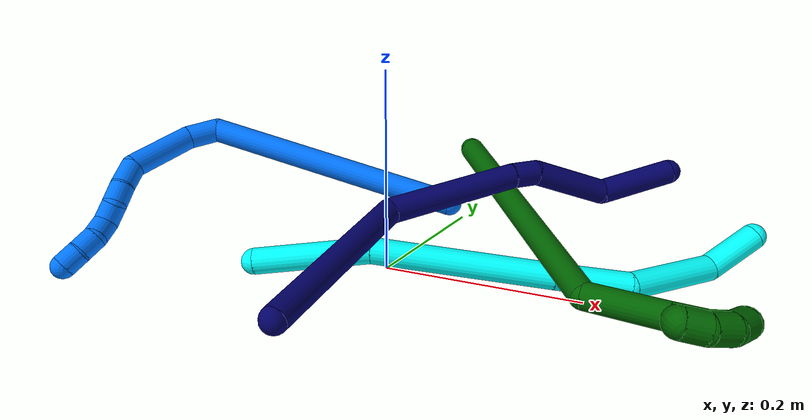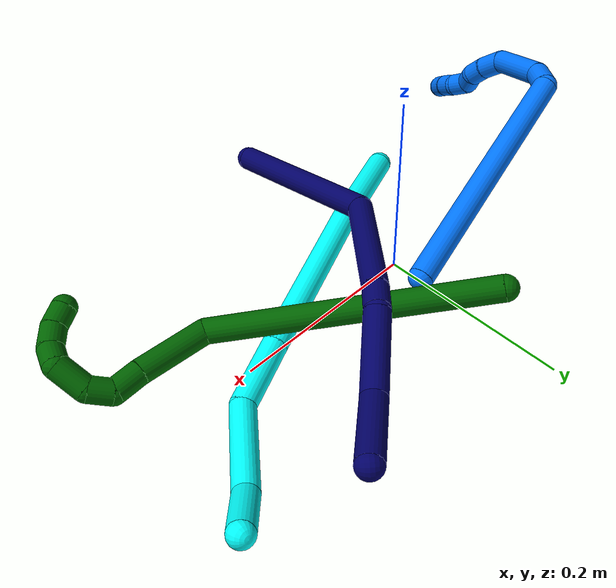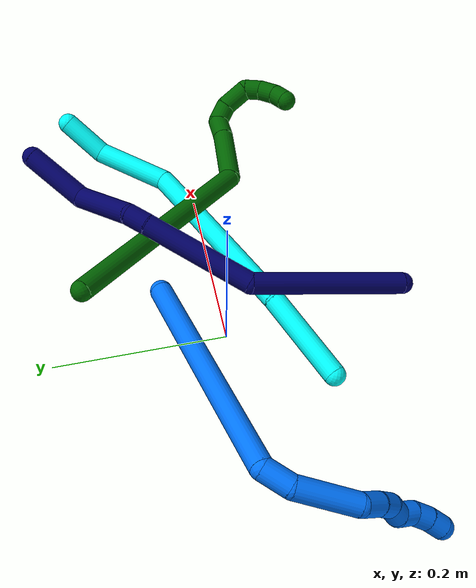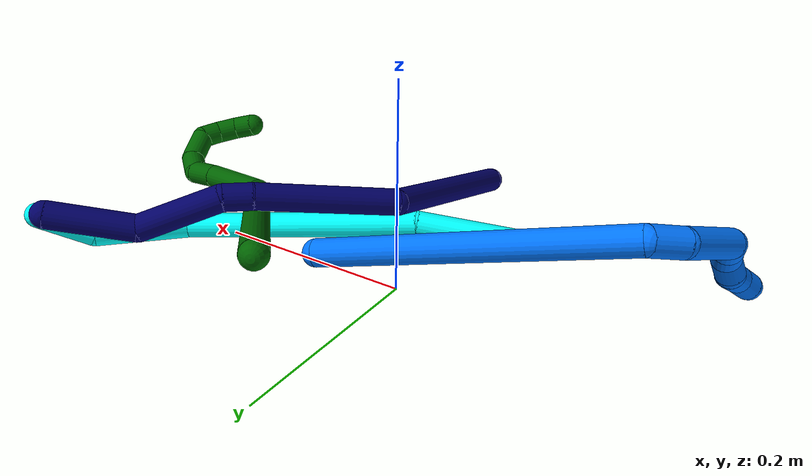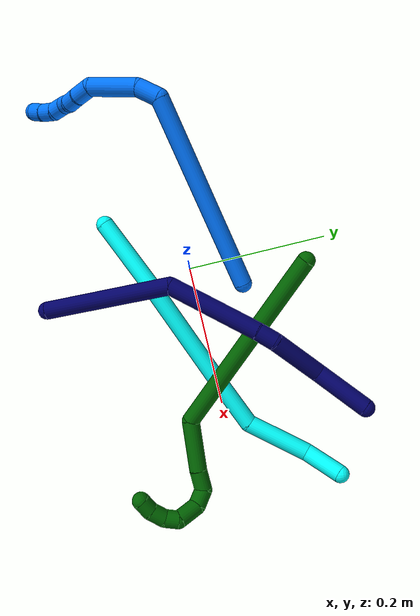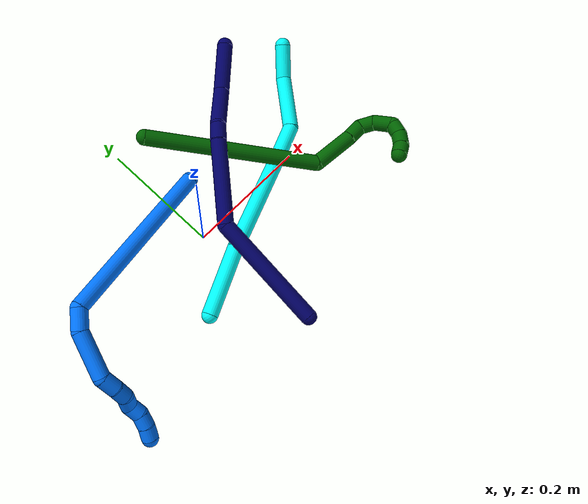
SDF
<sdf version="1.7">
 <world name="default">
  <model name="photoneo_s_sensor">
   <static>1</static>
   <pose>0 0 2 1.57079 1.57079 3.14159</pose>
   <link name="link">
    <inertial><mass>0.1</mass></inertial>
    <sensor name="sensor" type="depth">
     <update_rate>30</update_rate>
     <camera>
      <horizontal_fov>1.22</horizontal_fov>
      <image><width>1920</width><height>1200</height><format>B8G8R8</format></image>
      <clip><near>0.1</near><far>4</far></clip>
      <depth_camera><output>points</output></depth_camera>
     </camera>
     <plugin name="camera_plugin" filename="libgazebo_ros_depth_camera.so">
      <baseline>0.2</baseline>
      <alwaysOn>1</alwaysOn>
      <updateRate>0.0</updateRate>
      <cameraName>camera_ir</cameraName>
      <imageTopicName>/camera/color/image_raw</imageTopicName>
      <cameraInfoTopicName>/camera/color/camera_info</cameraInfoTopicName>
      <depthImageTopicName>/camera/depth/image_raw</depthImageTopicName>
      <depthImageCameraInfoTopicName>/camera/depth/camera_info</depthImageCameraInfoTopicName>
      <pointCloudTopicName>/camera/depth/points</pointCloudTopicName>
      <frameName>fr_optical</frameName>
      <pointCloudCutoff>0.1</pointCloudCutoff>
      <pointCloudCutoffMax>2.0</pointCloudCutoffMax>
      <distortionK1>0</distortionK1>
      <distortionK2>0</distortionK2>
      <distortionK3>0</distortionK3>
      <distortionT1>0</distortionT1>
      <distortionT2>0</distortionT2>
      <CxPrime>0</CxPrime>
      <Cx>0</Cx>
      <Cy>0</Cy>
      <focalLength>0</focalLength>
      <hackBaseline>0</hackBaseline>
     </plugin>
    </sensor>
   </link>
  </model>
  <model name="bin">
   <static>1</static>
   <link name="bottom">
    <collision name="collision-bottom">
     <pose>0 0 -0.01 0 -0 0</pose>
     <geometry><box><size>0.8 0.6 0.02</size></box></geometry>
     <surface>
      <friction><ode><mu>100</mu><mu2>100</mu2></ode></friction>
      <contact><collide_bitmask>65535</collide_bitmask></contact>
     </surface>
    </collision>
   </link>
   <link name="west_wall">
    <collision name="collision-west_wall">
     <pose>-0.41 0 0.1 0 -0 0</pose>
     <geometry><box><size>0.02 0.6 0.2</size></box></geometry>
     <surface>
      <friction><ode><mu>100</mu><mu2>100</mu2></ode></friction>
      <contact><collide_bitmask>65535</collide_bitmask></contact>
     </surface>
    </collision>
   </link>
   <link name="east_wall">
    <collision name="collision-east_wall">
     <pose>0.41 0 0.1 0 -0 0</pose>
     <geometry><box><size>0.02 0.6 0.2</size></box></geometry>
     <surface>
      <friction><ode><mu>100</mu><mu2>100</mu2></ode></friction>
      <contact><collide_bitmask>65535</collide_bitmask></contact>
     </surface>
    </collision>
   </link>
   <link name="south_wall">
    <collision name="collision-south_wall">
     <pose>0 -0.31 0.1 0 -0 0</pose>
     <geometry><box><size>0.8 0.02 0.2</size></box></geometry>
     <surface>
      <friction><ode><mu>100</mu><mu2>100</mu2></ode></friction>
      <contact><collide_bitmask>65535</collide_bitmask></contact>
     </surface>
    </collision>
   </link>
   <link name="north_wall">
    <collision name="collision-north_wall">
     <pose>0 0.31 0.1 0 -0 0</pose>
     <geometry><box><size>0.8 0.02 0.2</size></box></geometry>
     <surface>
      <friction><ode><mu>100</mu><mu2>100</mu2></ode></friction>
      <contact><collide_bitmask>65535</collide_bitmask></contact>
     </surface>
    </collision>
   </link>
  </model>
  <model name="3">
   <static>0</static>
   <link name="3">
    <collision name="collision-cylinder-e_1_1_4">
     <pose>-0.047661 0.008458 -0.026598 -2.83372 -1.04103 2.61292</pose>
     <geometry><cylinder><radius>0.0125</radius><length>0.110464</length></cylinder></geometry>
     <surface>
      <friction><ode><mu>1.16</mu><mu2>1.16</mu2><slip1>0</slip1><slip2>0</slip2></ode></friction>
      <contact><ode><kp>1e+06</kp><kd>1</kd><max_vel>0</max_vel><min_depth>0.001</min_depth></ode></contact>
     </surface>
    </collision>
    <visual name="visual-cylinder-e_1_1_4">
     <pose>-0.047661 0.008458 -0.026598 -2.83372 -1.04103 2.61292</pose>
     <geometry><cylinder><radius>0.0125</radius><length>0.110464</length></cylinder></geometry>
     <material><ambient>0.003922 1 0.996078 1</ambient></material>
    </visual>
    <collision name="collision-cylinder-e_2_4_5">
     <pose>-0.16972 0.046668 -0.083206 -2.36049 -1.05423 1.91034</pose>
     <geometry><cylinder><radius>0.0125</radius><length>0.171124</length></cylinder></geometry>
     <surface>
      <friction><ode><mu>1.16</mu><mu2>1.16</mu2><slip1>0</slip1><slip2>0</slip2></ode></friction>
      <contact><ode><kp>1e+06</kp><kd>1</kd><max_vel>0</max_vel><min_depth>0.001</min_depth></ode></contact>
     </surface>
    </collision>
    <visual name="visual-cylinder-e_2_4_5">
     <pose>-0.16972 0.046668 -0.083206 -2.36049 -1.05423 1.91034</pose>
     <geometry><cylinder><radius>0.0125</radius><length>0.171124</length></cylinder></geometry>
     <material><ambient>0.003922 1 0.996078 1</ambient></material>
    </visual>
    <collision name="collision-cylinder-e_3_5_6">
     <pose>-0.274149 0.088351 -0.126179 -2.39769 -1.04027 1.94569</pose>
     <geometry><cylinder><radius>0.0125</radius><length>0.069634</length></cylinder></geometry>
     <surface>
      <friction><ode><mu>1.16</mu><mu2>1.16</mu2><slip1>0</slip1><slip2>0</slip2></ode></friction>
      <contact><ode><kp>1e+06</kp><kd>1</kd><max_vel>0</max_vel><min_depth>0.001</min_depth></ode></contact>
     </surface>
    </collision>
    <visual name="visual-cylinder-e_3_5_6">
     <pose>-0.274149 0.088351 -0.126179 -2.39769 -1.04027 1.94569</pose>
     <geometry><cylinder><radius>0.0125</radius><length>0.069634</length></cylinder></geometry>
     <material><ambient>0.003922 1 0.996078 1</ambient></material>
    </visual>
    <collision name="collision-cylinder-e_4_6_7">
     <pose>-0.329491 0.11679 -0.174176 -2.70121 -0.578881 1.85258</pose>
     <geometry><cylinder><radius>0.0125</radius><length>0.092533</length></cylinder></geometry>
     <surface>
      <friction><ode><mu>1.16</mu><mu2>1.16</mu2><slip1>0</slip1><slip2>0</slip2></ode></friction>
      <contact><ode><kp>1e+06</kp><kd>1</kd><max_vel>0</max_vel><min_depth>0.001</min_depth></ode></contact>
     </surface>
    </collision>
    <visual name="visual-cylinder-e_4_6_7">
     <pose>-0.329491 0.11679 -0.174176 -2.70121 -0.578881 1.85258</pose>
     <geometry><cylinder><radius>0.0125</radius><length>0.092533</length></cylinder></geometry>
     <material><ambient>0.003922 1 0.996078 1</ambient></material>
    </visual>
    <collision name="collision-cylinder-e_5_7_2">
     <pose>-0.370523 0.131011 -0.232415 3.04331 -0.593143 -2.82245</pose>
     <geometry><cylinder><radius>0.0125</radius><length>0.056245</length></cylinder></geometry>
     <surface>
      <friction><ode><mu>1.16</mu><mu2>1.16</mu2><slip1>0</slip1><slip2>0</slip2></ode></friction>
      <contact><ode><kp>1e+06</kp><kd>1</kd><max_vel>0</max_vel><min_depth>0.001</min_depth></ode></contact>
     </surface>
    </collision>
    <visual name="visual-cylinder-e_5_7_2">
     <pose>-0.370523 0.131011 -0.232415 3.04331 -0.593143 -2.82245</pose>
     <geometry><cylinder><radius>0.0125</radius><length>0.056245</length></cylinder></geometry>
     <material><ambient>0.003922 1 0.996078 1</ambient></material>
    </visual>
    <collision name="collision-sphere-2">
     <pose>-0.386243 0.128723 -0.255622 0 -0 0</pose>
     <geometry><sphere><radius>0.0125</radius></sphere></geometry>
     <surface>
      <friction><ode><mu>1.16</mu><mu2>1.16</mu2><slip1>0</slip1><slip2>0</slip2></ode></friction>
      <contact><ode><kp>1e+06</kp><kd>1</kd><max_vel>0</max_vel><min_depth>0.001</min_depth></ode></contact>
     </surface>
    </collision>
    <visual name="visual-sphere-2">
     <pose>-0.386243 0.128723 -0.255622 0 -0 0</pose>
     <geometry><sphere><radius>0.0125</radius></sphere></geometry>
     <material><ambient>0.003922 1 0.996078 1</ambient></material>
    </visual>
    <collision name="collision-sphere-7">
     <pose>-0.354803 0.133299 -0.209209 0 -0 0</pose>
     <geometry><sphere><radius>0.0125</radius></sphere></geometry>
     <surface>
      <friction><ode><mu>1.16</mu><mu2>1.16</mu2><slip1>0</slip1><slip2>0</slip2></ode></friction>
      <contact><ode><kp>1e+06</kp><kd>1</kd><max_vel>0</max_vel><min_depth>0.001</min_depth></ode></contact>
     </surface>
    </collision>
    <visual name="visual-sphere-7">
     <pose>-0.354803 0.133299 -0.209209 0 -0 0</pose>
     <geometry><sphere><radius>0.0125</radius></sphere></geometry>
     <material><ambient>0.003922 1 0.996078 1</ambient></material>
    </visual>
    <collision name="collision-sphere-6">
     <pose>-0.30418 0.10028 -0.139142 0 -0 0</pose>
     <geometry><sphere><radius>0.0125</radius></sphere></geometry>
     <surface>
      <friction><ode><mu>1.16</mu><mu2>1.16</mu2><slip1>0</slip1><slip2>0</slip2></ode></friction>
      <contact><ode><kp>1e+06</kp><kd>1</kd><max_vel>0</max_vel><min_depth>0.001</min_depth></ode></contact>
     </surface>
    </collision>
    <visual name="visual-sphere-6">
     <pose>-0.30418 0.10028 -0.139142 0 -0 0</pose>
     <geometry><sphere><radius>0.0125</radius></sphere></geometry>
     <material><ambient>0.003922 1 0.996078 1</ambient></material>
    </visual>
    <collision name="collision-sphere-5">
     <pose>-0.244118 0.076421 -0.113216 0 -0 0</pose>
     <geometry><sphere><radius>0.0125</radius></sphere></geometry>
     <surface>
      <friction><ode><mu>1.16</mu><mu2>1.16</mu2><slip1>0</slip1><slip2>0</slip2></ode></friction>
      <contact><ode><kp>1e+06</kp><kd>1</kd><max_vel>0</max_vel><min_depth>0.001</min_depth></ode></contact>
     </surface>
    </collision>
    <visual name="visual-sphere-5">
     <pose>-0.244118 0.076421 -0.113216 0 -0 0</pose>
     <geometry><sphere><radius>0.0125</radius></sphere></geometry>
     <material><ambient>0.003922 1 0.996078 1</ambient></material>
    </visual>
    <collision name="collision-sphere-1">
     <geometry><sphere><radius>0.0125</radius></sphere></geometry>
     <surface>
      <friction><ode><mu>1.16</mu><mu2>1.16</mu2><slip1>0</slip1><slip2>0</slip2></ode></friction>
      <contact><ode><kp>1e+06</kp><kd>1</kd><max_vel>0</max_vel><min_depth>0.001</min_depth></ode></contact>
     </surface>
    </collision>
    <visual name="visual-sphere-1">
     <geometry><sphere><radius>0.0125</radius></sphere></geometry>
     <material><ambient>0.003922 1 0.996078 1</ambient></material>
    </visual>
    <collision name="collision-sphere-4">
     <pose>-0.095322 0.016915 -0.053197 0 -0 0</pose>
     <geometry><sphere><radius>0.0125</radius></sphere></geometry>
     <surface>
      <friction><ode><mu>1.16</mu><mu2>1.16</mu2><slip1>0</slip1><slip2>0</slip2></ode></friction>
      <contact><ode><kp>1e+06</kp><kd>1</kd><max_vel>0</max_vel><min_depth>0.001</min_depth></ode></contact>
     </surface>
    </collision>
    <visual name="visual-sphere-4">
     <pose>-0.095322 0.016915 -0.053197 0 -0 0</pose>
     <geometry><sphere><radius>0.0125</radius></sphere></geometry>
     <material><ambient>0.003922 1 0.996078 1</ambient></material>
    </visual>
    <inertial>
     <pose>-0.209454 0.066496 -0.110305 0 -0 0</pose>
     <mass>0.5</mass>
     <inertia>
      <ixx>0.000107</ixx>
      <ixy>0</ixy>
      <ixz>0</ixz>
      <iyy>0.000835</iyy>
      <iyz>0</iyz>
      <izz>0.000324</izz>
     </inertia>
    </inertial>
   </link>
   <pose>-0.086796 -0.1019 0.026876 -2.02742 0.043628 3.02572</pose>
  </model>
  <model name="6">
   <static>0</static>
   <link name="6">
    <collision name="collision-cylinder-e_1_1_4">
     <pose>0.025801 -0.017075 0.135964 0.124928 0.186105 0.011674</pose>
     <geometry><cylinder><radius>0.0125</radius><length>0.278879</length></cylinder></geometry>
     <surface>
      <friction><ode><mu>1.16</mu><mu2>1.16</mu2><slip1>0</slip1><slip2>0</slip2></ode></friction>
      <contact><ode><kp>1e+06</kp><kd>1</kd><max_vel>0</max_vel><min_depth>0.001</min_depth></ode></contact>
     </surface>
    </collision>
    <visual name="visual-cylinder-e_1_1_4">
     <pose>0.025801 -0.017075 0.135964 0.124928 0.186105 0.011674</pose>
     <geometry><cylinder><radius>0.0125</radius><length>0.278879</length></cylinder></geometry>
     <material><ambient>0 0.392157 0.003922 1</ambient></material>
    </visual>
    <collision name="collision-cylinder-e_2_4_5">
     <pose>0.080202 -0.042928 0.291678 0.418247 0.923655 0.210481</pose>
     <geometry><cylinder><radius>0.0125</radius><length>0.071698</length></cylinder></geometry>
     <surface>
      <friction><ode><mu>1.16</mu><mu2>1.16</mu2><slip1>0</slip1><slip2>0</slip2></ode></friction>
      <contact><ode><kp>1e+06</kp><kd>1</kd><max_vel>0</max_vel><min_depth>0.001</min_depth></ode></contact>
     </surface>
    </collision>
    <visual name="visual-cylinder-e_2_4_5">
     <pose>0.080202 -0.042928 0.291678 0.418247 0.923655 0.210481</pose>
     <geometry><cylinder><radius>0.0125</radius><length>0.071698</length></cylinder></geometry>
     <material><ambient>0 0.392157 0.003922 1</ambient></material>
    </visual>
    <collision name="collision-cylinder-e_3_5_6">
     <pose>0.1208 -0.056155 0.31815 0.584707 0.979201 0.318058</pose>
     <geometry><cylinder><radius>0.0125</radius><length>0.028906</length></cylinder></geometry>
     <surface>
      <friction><ode><mu>1.16</mu><mu2>1.16</mu2><slip1>0</slip1><slip2>0</slip2></ode></friction>
      <contact><ode><kp>1e+06</kp><kd>1</kd><max_vel>0</max_vel><min_depth>0.001</min_depth></ode></contact>
     </surface>
    </collision>
    <visual name="visual-cylinder-e_3_5_6">
     <pose>0.1208 -0.056155 0.31815 0.584707 0.979201 0.318058</pose>
     <geometry><cylinder><radius>0.0125</radius><length>0.028906</length></cylinder></geometry>
     <material><ambient>0 0.392157 0.003922 1</ambient></material>
    </visual>
    <collision name="collision-cylinder-e_4_6_7">
     <pose>0.139325 -0.05665 0.334268 -0.39835 0.56956 -0.118041</pose>
     <geometry><cylinder><radius>0.0125</radius><length>0.024212</length></cylinder></geometry>
     <surface>
      <friction><ode><mu>1.16</mu><mu2>1.16</mu2><slip1>0</slip1><slip2>0</slip2></ode></friction>
      <contact><ode><kp>1e+06</kp><kd>1</kd><max_vel>0</max_vel><min_depth>0.001</min_depth></ode></contact>
     </surface>
    </collision>
    <visual name="visual-cylinder-e_4_6_7">
     <pose>0.139325 -0.05665 0.334268 -0.39835 0.56956 -0.118041</pose>
     <geometry><cylinder><radius>0.0125</radius><length>0.024212</length></cylinder></geometry>
     <material><ambient>0 0.392157 0.003922 1</ambient></material>
    </visual>
    <collision name="collision-cylinder-e_5_7_8">
     <pose>0.147482 -0.04146 0.355885 -0.743423 0.097833 -0.038164</pose>
     <geometry><cylinder><radius>0.0125</radius><length>0.03336</length></cylinder></geometry>
     <surface>
      <friction><ode><mu>1.16</mu><mu2>1.16</mu2><slip1>0</slip1><slip2>0</slip2></ode></friction>
      <contact><ode><kp>1e+06</kp><kd>1</kd><max_vel>0</max_vel><min_depth>0.001</min_depth></ode></contact>
     </surface>
    </collision>
    <visual name="visual-cylinder-e_5_7_8">
     <pose>0.147482 -0.04146 0.355885 -0.743423 0.097833 -0.038164</pose>
     <geometry><cylinder><radius>0.0125</radius><length>0.03336</length></cylinder></geometry>
     <material><ambient>0 0.392157 0.003922 1</ambient></material>
    </visual>
    <collision name="collision-cylinder-e_6_8_9">
     <pose>0.142917 -0.025215 0.374227 -0.685815 -0.664386 0.245088</pose>
     <geometry><cylinder><radius>0.0125</radius><length>0.020094</length></cylinder></geometry>
     <surface>
      <friction><ode><mu>1.16</mu><mu2>1.16</mu2><slip1>0</slip1><slip2>0</slip2></ode></friction>
      <contact><ode><kp>1e+06</kp><kd>1</kd><max_vel>0</max_vel><min_depth>0.001</min_depth></ode></contact>
     </surface>
    </collision>
    <visual name="visual-cylinder-e_6_8_9">
     <pose>0.142917 -0.025215 0.374227 -0.685815 -0.664386 0.245088</pose>
     <geometry><cylinder><radius>0.0125</radius><length>0.020094</length></cylinder></geometry>
     <material><ambient>0 0.392157 0.003922 1</ambient></material>
    </visual>
    <collision name="collision-cylinder-e_7_9_10">
     <pose>0.128089 -0.013629 0.383105 -1.17395 -0.880371 0.607236</pose>
     <geometry><cylinder><radius>0.0125</radius><length>0.022395</length></cylinder></geometry>
     <surface>
      <friction><ode><mu>1.16</mu><mu2>1.16</mu2><slip1>0</slip1><slip2>0</slip2></ode></friction>
      <contact><ode><kp>1e+06</kp><kd>1</kd><max_vel>0</max_vel><min_depth>0.001</min_depth></ode></contact>
     </surface>
    </collision>
    <visual name="visual-cylinder-e_7_9_10">
     <pose>0.128089 -0.013629 0.383105 -1.17395 -0.880371 0.607236</pose>
     <geometry><cylinder><radius>0.0125</radius><length>0.022395</length></cylinder></geometry>
     <material><ambient>0 0.392157 0.003922 1</ambient></material>
    </visual>
    <collision name="collision-cylinder-e_8_10_2">
     <pose>0.111179 -0.001114 0.384935 -1.72548 -0.942764 1.07397</pose>
     <geometry><cylinder><radius>0.0125</radius><length>0.020456</length></cylinder></geometry>
     <surface>
      <friction><ode><mu>1.16</mu><mu2>1.16</mu2><slip1>0</slip1><slip2>0</slip2></ode></friction>
      <contact><ode><kp>1e+06</kp><kd>1</kd><max_vel>0</max_vel><min_depth>0.001</min_depth></ode></contact>
     </surface>
    </collision>
    <visual name="visual-cylinder-e_8_10_2">
     <pose>0.111179 -0.001114 0.384935 -1.72548 -0.942764 1.07397</pose>
     <geometry><cylinder><radius>0.0125</radius><length>0.020456</length></cylinder></geometry>
     <material><ambient>0 0.392157 0.003922 1</ambient></material>
    </visual>
    <collision name="collision-sphere-2">
     <pose>0.102903 0.004824 0.384009 0 -0 0</pose>
     <geometry><sphere><radius>0.0125</radius></sphere></geometry>
     <surface>
      <friction><ode><mu>1.16</mu><mu2>1.16</mu2><slip1>0</slip1><slip2>0</slip2></ode></friction>
      <contact><ode><kp>1e+06</kp><kd>1</kd><max_vel>0</max_vel><min_depth>0.001</min_depth></ode></contact>
     </surface>
    </collision>
    <visual name="visual-sphere-2">
     <pose>0.102903 0.004824 0.384009 0 -0 0</pose>
     <geometry><sphere><radius>0.0125</radius></sphere></geometry>
     <material><ambient>0 0.392157 0.003922 1</ambient></material>
    </visual>
    <collision name="collision-sphere-10">
     <pose>0.119456 -0.007052 0.385861 0 -0 0</pose>
     <geometry><sphere><radius>0.0125</radius></sphere></geometry>
     <surface>
      <friction><ode><mu>1.16</mu><mu2>1.16</mu2><slip1>0</slip1><slip2>0</slip2></ode></friction>
      <contact><ode><kp>1e+06</kp><kd>1</kd><max_vel>0</max_vel><min_depth>0.001</min_depth></ode></contact>
     </surface>
    </collision>
    <visual name="visual-sphere-10">
     <pose>0.119456 -0.007052 0.385861 0 -0 0</pose>
     <geometry><sphere><radius>0.0125</radius></sphere></geometry>
     <material><ambient>0 0.392157 0.003922 1</ambient></material>
    </visual>
    <collision name="collision-sphere-9">
     <pose>0.136722 -0.020206 0.380348 0 -0 0</pose>
     <geometry><sphere><radius>0.0125</radius></sphere></geometry>
     <surface>
      <friction><ode><mu>1.16</mu><mu2>1.16</mu2><slip1>0</slip1><slip2>0</slip2></ode></friction>
      <contact><ode><kp>1e+06</kp><kd>1</kd><max_vel>0</max_vel><min_depth>0.001</min_depth></ode></contact>
     </surface>
    </collision>
    <visual name="visual-sphere-9">
     <pose>0.136722 -0.020206 0.380348 0 -0 0</pose>
     <geometry><sphere><radius>0.0125</radius></sphere></geometry>
     <material><ambient>0 0.392157 0.003922 1</ambient></material>
    </visual>
    <collision name="collision-sphere-4">
     <pose>0.051602 -0.034149 0.271928 0 -0 0</pose>
     <geometry><sphere><radius>0.0125</radius></sphere></geometry>
     <surface>
      <friction><ode><mu>1.16</mu><mu2>1.16</mu2><slip1>0</slip1><slip2>0</slip2></ode></friction>
      <contact><ode><kp>1e+06</kp><kd>1</kd><max_vel>0</max_vel><min_depth>0.001</min_depth></ode></contact>
     </surface>
    </collision>
    <visual name="visual-sphere-4">
     <pose>0.051602 -0.034149 0.271928 0 -0 0</pose>
     <geometry><sphere><radius>0.0125</radius></sphere></geometry>
     <material><ambient>0 0.392157 0.003922 1</ambient></material>
    </visual>
    <collision name="collision-sphere-1">
     <geometry><sphere><radius>0.0125</radius></sphere></geometry>
     <surface>
      <friction><ode><mu>1.16</mu><mu2>1.16</mu2><slip1>0</slip1><slip2>0</slip2></ode></friction>
      <contact><ode><kp>1e+06</kp><kd>1</kd><max_vel>0</max_vel><min_depth>0.001</min_depth></ode></contact>
     </surface>
    </collision>
    <visual name="visual-sphere-1">
     <geometry><sphere><radius>0.0125</radius></sphere></geometry>
     <material><ambient>0 0.392157 0.003922 1</ambient></material>
    </visual>
    <collision name="collision-sphere-8">
     <pose>0.149111 -0.030225 0.368105 0 -0 0</pose>
     <geometry><sphere><radius>0.0125</radius></sphere></geometry>
     <surface>
      <friction><ode><mu>1.16</mu><mu2>1.16</mu2><slip1>0</slip1><slip2>0</slip2></ode></friction>
      <contact><ode><kp>1e+06</kp><kd>1</kd><max_vel>0</max_vel><min_depth>0.001</min_depth></ode></contact>
     </surface>
    </collision>
    <visual name="visual-sphere-8">
     <pose>0.149111 -0.030225 0.368105 0 -0 0</pose>
     <geometry><sphere><radius>0.0125</radius></sphere></geometry>
     <material><ambient>0 0.392157 0.003922 1</ambient></material>
    </visual>
    <collision name="collision-sphere-5">
     <pose>0.108803 -0.051706 0.311429 0 -0 0</pose>
     <geometry><sphere><radius>0.0125</radius></sphere></geometry>
     <surface>
      <friction><ode><mu>1.16</mu><mu2>1.16</mu2><slip1>0</slip1><slip2>0</slip2></ode></friction>
      <contact><ode><kp>1e+06</kp><kd>1</kd><max_vel>0</max_vel><min_depth>0.001</min_depth></ode></contact>
     </surface>
    </collision>
    <visual name="visual-sphere-5">
     <pose>0.108803 -0.051706 0.311429 0 -0 0</pose>
     <geometry><sphere><radius>0.0125</radius></sphere></geometry>
     <material><ambient>0 0.392157 0.003922 1</ambient></material>
    </visual>
    <collision name="collision-sphere-6">
     <pose>0.132796 -0.060604 0.324871 0 -0 0</pose>
     <geometry><sphere><radius>0.0125</radius></sphere></geometry>
     <surface>
      <friction><ode><mu>1.16</mu><mu2>1.16</mu2><slip1>0</slip1><slip2>0</slip2></ode></friction>
      <contact><ode><kp>1e+06</kp><kd>1</kd><max_vel>0</max_vel><min_depth>0.001</min_depth></ode></contact>
     </surface>
    </collision>
    <visual name="visual-sphere-6">
     <pose>0.132796 -0.060604 0.324871 0 -0 0</pose>
     <geometry><sphere><radius>0.0125</radius></sphere></geometry>
     <material><ambient>0 0.392157 0.003922 1</ambient></material>
    </visual>
    <collision name="collision-sphere-7">
     <pose>0.145853 -0.052695 0.343665 0 -0 0</pose>
     <geometry><sphere><radius>0.0125</radius></sphere></geometry>
     <surface>
      <friction><ode><mu>1.16</mu><mu2>1.16</mu2><slip1>0</slip1><slip2>0</slip2></ode></friction>
      <contact><ode><kp>1e+06</kp><kd>1</kd><max_vel>0</max_vel><min_depth>0.001</min_depth></ode></contact>
     </surface>
    </collision>
    <visual name="visual-sphere-7">
     <pose>0.145853 -0.052695 0.343665 0 -0 0</pose>
     <geometry><sphere><radius>0.0125</radius></sphere></geometry>
     <material><ambient>0 0.392157 0.003922 1</ambient></material>
    </visual>
    <inertial>
     <pose>0.065491 -0.026104 0.223932 0 -0 0</pose>
     <mass>0.5</mass>
     <inertia>
      <ixx>0.001852</ixx>
      <ixy>0</ixy>
      <ixz>0</ixz>
      <iyy>0.001876</iyy>
      <iyz>0</iyz>
      <izz>-0.000108</izz>
     </inertia>
    </inertial>
   </link>
   <pose>0.030191 0.151613 0.096958 1.80926 -0.393788 0.413408</pose>
  </model>
  <model name="7">
   <static>0</static>
   <link name="7">
    <collision name="collision-cylinder-e_1_1_4">
     <pose>-0.001954 0.06949 -0.059176 -2.2762 -0.021407 0.04634</pose>
     <geometry><cylinder><radius>0.0125</radius><length>0.182586</length></cylinder></geometry>
     <surface>
      <friction><ode><mu>1.16</mu><mu2>1.16</mu2><slip1>0</slip1><slip2>0</slip2></ode></friction>
      <contact><ode><kp>1e+06</kp><kd>1</kd><max_vel>0</max_vel><min_depth>0.001</min_depth></ode></contact>
     </surface>
    </collision>
    <visual name="visual-cylinder-e_1_1_4">
     <pose>-0.001954 0.06949 -0.059176 -2.2762 -0.021407 0.04634</pose>
     <geometry><cylinder><radius>0.0125</radius><length>0.182586</length></cylinder></geometry>
     <material><ambient>0.003922 0 0.403922 1</ambient></material>
    </visual>
    <collision name="collision-cylinder-e_2_4_5">
     <pose>1.6e-05 0.205767 -0.121628 -1.61983 0.058616 -0.061561</pose>
     <geometry><cylinder><radius>0.0125</radius><length>0.133965</length></cylinder></geometry>
     <surface>
      <friction><ode><mu>1.16</mu><mu2>1.16</mu2><slip1>0</slip1><slip2>0</slip2></ode></friction>
      <contact><ode><kp>1e+06</kp><kd>1</kd><max_vel>0</max_vel><min_depth>0.001</min_depth></ode></contact>
     </surface>
    </collision>
    <visual name="visual-cylinder-e_2_4_5">
     <pose>1.6e-05 0.205767 -0.121628 -1.61983 0.058616 -0.061561</pose>
     <geometry><cylinder><radius>0.0125</radius><length>0.133965</length></cylinder></geometry>
     <material><ambient>0.003922 0 0.403922 1</ambient></material>
    </visual>
    <collision name="collision-cylinder-e_3_5_6">
     <pose>0.00621 0.28565 -0.124751 -1.55903 0.171645 -0.169648</pose>
     <geometry><cylinder><radius>0.0125</radius><length>0.026585</length></cylinder></geometry>
     <surface>
      <friction><ode><mu>1.16</mu><mu2>1.16</mu2><slip1>0</slip1><slip2>0</slip2></ode></friction>
      <contact><ode><kp>1e+06</kp><kd>1</kd><max_vel>0</max_vel><min_depth>0.001</min_depth></ode></contact>
     </surface>
    </collision>
    <visual name="visual-cylinder-e_3_5_6">
     <pose>0.00621 0.28565 -0.124751 -1.55903 0.171645 -0.169648</pose>
     <geometry><cylinder><radius>0.0125</radius><length>0.026585</length></cylinder></geometry>
     <material><ambient>0.003922 0 0.403922 1</ambient></material>
    </visual>
    <collision name="collision-cylinder-e_4_6_7">
     <pose>0.028685 0.332206 -0.1203 -1.44306 0.53963 -0.477346</pose>
     <geometry><cylinder><radius>0.0125</radius><length>0.078645</length></cylinder></geometry>
     <surface>
      <friction><ode><mu>1.16</mu><mu2>1.16</mu2><slip1>0</slip1><slip2>0</slip2></ode></friction>
      <contact><ode><kp>1e+06</kp><kd>1</kd><max_vel>0</max_vel><min_depth>0.001</min_depth></ode></contact>
     </surface>
    </collision>
    <visual name="visual-cylinder-e_4_6_7">
     <pose>0.028685 0.332206 -0.1203 -1.44306 0.53963 -0.477346</pose>
     <geometry><cylinder><radius>0.0125</radius><length>0.078645</length></cylinder></geometry>
     <material><ambient>0.003922 0 0.403922 1</ambient></material>
    </visual>
    <collision name="collision-cylinder-e_5_7_2">
     <pose>0.048484 0.404563 -0.111949 -1.46695 -0.010391 0.009364</pose>
     <geometry><cylinder><radius>0.0125</radius><length>0.078219</length></cylinder></geometry>
     <surface>
      <friction><ode><mu>1.16</mu><mu2>1.16</mu2><slip1>0</slip1><slip2>0</slip2></ode></friction>
      <contact><ode><kp>1e+06</kp><kd>1</kd><max_vel>0</max_vel><min_depth>0.001</min_depth></ode></contact>
     </surface>
    </collision>
    <visual name="visual-cylinder-e_5_7_2">
     <pose>0.048484 0.404563 -0.111949 -1.46695 -0.010391 0.009364</pose>
     <geometry><cylinder><radius>0.0125</radius><length>0.078219</length></cylinder></geometry>
     <material><ambient>0.003922 0 0.403922 1</ambient></material>
    </visual>
    <collision name="collision-sphere-2">
     <pose>0.048077 0.44346 -0.107895 0 -0 0</pose>
     <geometry><sphere><radius>0.0125</radius></sphere></geometry>
     <surface>
      <friction><ode><mu>1.16</mu><mu2>1.16</mu2><slip1>0</slip1><slip2>0</slip2></ode></friction>
      <contact><ode><kp>1e+06</kp><kd>1</kd><max_vel>0</max_vel><min_depth>0.001</min_depth></ode></contact>
     </surface>
    </collision>
    <visual name="visual-sphere-2">
     <pose>0.048077 0.44346 -0.107895 0 -0 0</pose>
     <geometry><sphere><radius>0.0125</radius></sphere></geometry>
     <material><ambient>0.003922 0 0.403922 1</ambient></material>
    </visual>
    <collision name="collision-sphere-7">
     <pose>0.04889 0.365666 -0.116003 0 -0 0</pose>
     <geometry><sphere><radius>0.0125</radius></sphere></geometry>
     <surface>
      <friction><ode><mu>1.16</mu><mu2>1.16</mu2><slip1>0</slip1><slip2>0</slip2></ode></friction>
      <contact><ode><kp>1e+06</kp><kd>1</kd><max_vel>0</max_vel><min_depth>0.001</min_depth></ode></contact>
     </surface>
    </collision>
    <visual name="visual-sphere-7">
     <pose>0.04889 0.365666 -0.116003 0 -0 0</pose>
     <geometry><sphere><radius>0.0125</radius></sphere></geometry>
     <material><ambient>0.003922 0 0.403922 1</ambient></material>
    </visual>
    <collision name="collision-sphere-6">
     <pose>0.00848 0.298746 -0.124597 0 -0 0</pose>
     <geometry><sphere><radius>0.0125</radius></sphere></geometry>
     <surface>
      <friction><ode><mu>1.16</mu><mu2>1.16</mu2><slip1>0</slip1><slip2>0</slip2></ode></friction>
      <contact><ode><kp>1e+06</kp><kd>1</kd><max_vel>0</max_vel><min_depth>0.001</min_depth></ode></contact>
     </surface>
    </collision>
    <visual name="visual-sphere-6">
     <pose>0.00848 0.298746 -0.124597 0 -0 0</pose>
     <geometry><sphere><radius>0.0125</radius></sphere></geometry>
     <material><ambient>0.003922 0 0.403922 1</ambient></material>
    </visual>
    <collision name="collision-sphere-5">
     <pose>0.00394 0.272554 -0.124905 0 -0 0</pose>
     <geometry><sphere><radius>0.0125</radius></sphere></geometry>
     <surface>
      <friction><ode><mu>1.16</mu><mu2>1.16</mu2><slip1>0</slip1><slip2>0</slip2></ode></friction>
      <contact><ode><kp>1e+06</kp><kd>1</kd><max_vel>0</max_vel><min_depth>0.001</min_depth></ode></contact>
     </surface>
    </collision>
    <visual name="visual-sphere-5">
     <pose>0.00394 0.272554 -0.124905 0 -0 0</pose>
     <geometry><sphere><radius>0.0125</radius></sphere></geometry>
     <material><ambient>0.003922 0 0.403922 1</ambient></material>
    </visual>
    <collision name="collision-sphere-1">
     <geometry><sphere><radius>0.0125</radius></sphere></geometry>
     <surface>
      <friction><ode><mu>1.16</mu><mu2>1.16</mu2><slip1>0</slip1><slip2>0</slip2></ode></friction>
      <contact><ode><kp>1e+06</kp><kd>1</kd><max_vel>0</max_vel><min_depth>0.001</min_depth></ode></contact>
     </surface>
    </collision>
    <visual name="visual-sphere-1">
     <geometry><sphere><radius>0.0125</radius></sphere></geometry>
     <material><ambient>0.003922 0 0.403922 1</ambient></material>
    </visual>
    <collision name="collision-sphere-4">
     <pose>-0.003908 0.138979 -0.118351 0 -0 0</pose>
     <geometry><sphere><radius>0.0125</radius></sphere></geometry>
     <surface>
      <friction><ode><mu>1.16</mu><mu2>1.16</mu2><slip1>0</slip1><slip2>0</slip2></ode></friction>
      <contact><ode><kp>1e+06</kp><kd>1</kd><max_vel>0</max_vel><min_depth>0.001</min_depth></ode></contact>
     </surface>
    </collision>
    <visual name="visual-sphere-4">
     <pose>-0.003908 0.138979 -0.118351 0 -0 0</pose>
     <geometry><sphere><radius>0.0125</radius></sphere></geometry>
     <material><ambient>0.003922 0 0.403922 1</ambient></material>
    </visual>
    <inertial>
     <pose>0.011717 0.211237 -0.097265 0 -0 0</pose>
     <mass>0.5</mass>
     <inertia>
      <ixx>0.000795</ixx>
      <ixy>0</ixy>
      <ixz>0</ixz>
      <iyy>-0.000294</iyy>
      <iyz>0</iyz>
      <izz>-0.000711</izz>
     </inertia>
    </inertial>
   </link>
   <pose>0.012239 -0.20933 0.030458 1.81958 1.3446 1.05791</pose>
  </model>
  <model name="14">
   <static>0</static>
   <link name="14">
    <collision name="collision-cylinder-e_1_1_4">
     <pose>0.009338 -0.050371 0.125273 0.382305 0.069048 0.013367</pose>
     <geometry><cylinder><radius>0.0125</radius><length>0.270685</length></cylinder></geometry>
     <surface>
      <friction><ode><mu>1.16</mu><mu2>1.16</mu2><slip1>0</slip1><slip2>0</slip2></ode></friction>
      <contact><ode><kp>1e+06</kp><kd>1</kd><max_vel>0</max_vel><min_depth>0.001</min_depth></ode></contact>
     </surface>
    </collision>
    <visual name="visual-cylinder-e_1_1_4">
     <pose>0.009338 -0.050371 0.125273 0.382305 0.069048 0.013367</pose>
     <geometry><cylinder><radius>0.0125</radius><length>0.270685</length></cylinder></geometry>
     <material><ambient>0 0.462745 1 1</ambient></material>
    </visual>
    <collision name="collision-cylinder-e_2_4_5">
     <pose>0.011801 -0.112954 0.258743 0.979617 -0.437207 -0.235781</pose>
     <geometry><cylinder><radius>0.0125</radius><length>0.032473</length></cylinder></geometry>
     <surface>
      <friction><ode><mu>1.16</mu><mu2>1.16</mu2><slip1>0</slip1><slip2>0</slip2></ode></friction>
      <contact><ode><kp>1e+06</kp><kd>1</kd><max_vel>0</max_vel><min_depth>0.001</min_depth></ode></contact>
     </surface>
    </collision>
    <visual name="visual-cylinder-e_2_4_5">
     <pose>0.011801 -0.112954 0.258743 0.979617 -0.437207 -0.235781</pose>
     <geometry><cylinder><radius>0.0125</radius><length>0.032473</length></cylinder></geometry>
     <material><ambient>0 0.462745 1 1</ambient></material>
    </visual>
    <collision name="collision-cylinder-e_3_5_6">
     <pose>-0.013449 -0.153972 0.271597 1.41054 -0.562011 -0.481916</pose>
     <geometry><cylinder><radius>0.0125</radius><length>0.068965</length></cylinder></geometry>
     <surface>
      <friction><ode><mu>1.16</mu><mu2>1.16</mu2><slip1>0</slip1><slip2>0</slip2></ode></friction>
      <contact><ode><kp>1e+06</kp><kd>1</kd><max_vel>0</max_vel><min_depth>0.001</min_depth></ode></contact>
     </surface>
    </collision>
    <visual name="visual-cylinder-e_3_5_6">
     <pose>-0.013449 -0.153972 0.271597 1.41054 -0.562011 -0.481916</pose>
     <geometry><cylinder><radius>0.0125</radius><length>0.068965</length></cylinder></geometry>
     <material><ambient>0 0.462745 1 1</ambient></material>
    </visual>
    <collision name="collision-cylinder-e_4_6_7">
     <pose>-0.041597 -0.190511 0.272141 2.05944 -0.839963 -1.27819</pose>
     <geometry><cylinder><radius>0.0125</radius><length>0.026248</length></cylinder></geometry>
     <surface>
      <friction><ode><mu>1.16</mu><mu2>1.16</mu2><slip1>0</slip1><slip2>0</slip2></ode></friction>
      <contact><ode><kp>1e+06</kp><kd>1</kd><max_vel>0</max_vel><min_depth>0.001</min_depth></ode></contact>
     </surface>
    </collision>
    <visual name="visual-cylinder-e_4_6_7">
     <pose>-0.041597 -0.190511 0.272141 2.05944 -0.839963 -1.27819</pose>
     <geometry><cylinder><radius>0.0125</radius><length>0.026248</length></cylinder></geometry>
     <material><ambient>0 0.462745 1 1</ambient></material>
    </visual>
    <collision name="collision-cylinder-e_5_7_8">
     <pose>-0.060127 -0.203223 0.265239 2.08169 -0.993412 -1.49314</pose>
     <geometry><cylinder><radius>0.0125</radius><length>0.020903</length></cylinder></geometry>
     <surface>
      <friction><ode><mu>1.16</mu><mu2>1.16</mu2><slip1>0</slip1><slip2>0</slip2></ode></friction>
      <contact><ode><kp>1e+06</kp><kd>1</kd><max_vel>0</max_vel><min_depth>0.001</min_depth></ode></contact>
     </surface>
    </collision>
    <visual name="visual-cylinder-e_5_7_8">
     <pose>-0.060127 -0.203223 0.265239 2.08169 -0.993412 -1.49314</pose>
     <geometry><cylinder><radius>0.0125</radius><length>0.020903</length></cylinder></geometry>
     <material><ambient>0 0.462745 1 1</ambient></material>
    </visual>
    <collision name="collision-cylinder-e_6_8_9">
     <pose>-0.078641 -0.21087 0.263076 1.34042 -1.29674 -1.08158</pose>
     <geometry><cylinder><radius>0.0125</radius><length>0.020271</length></cylinder></geometry>
     <surface>
      <friction><ode><mu>1.16</mu><mu2>1.16</mu2><slip1>0</slip1><slip2>0</slip2></ode></friction>
      <contact><ode><kp>1e+06</kp><kd>1</kd><max_vel>0</max_vel><min_depth>0.001</min_depth></ode></contact>
     </surface>
    </collision>
    <visual name="visual-cylinder-e_6_8_9">
     <pose>-0.078641 -0.21087 0.263076 1.34042 -1.29674 -1.08158</pose>
     <geometry><cylinder><radius>0.0125</radius><length>0.020271</length></cylinder></geometry>
     <material><ambient>0 0.462745 1 1</ambient></material>
    </visual>
    <collision name="collision-cylinder-e_7_9_10">
     <pose>-0.094896 -0.220558 0.260486 2.00063 -0.699606 -1.03394</pose>
     <geometry><cylinder><radius>0.0125</radius><length>0.020181</length></cylinder></geometry>
     <surface>
      <friction><ode><mu>1.16</mu><mu2>1.16</mu2><slip1>0</slip1><slip2>0</slip2></ode></friction>
      <contact><ode><kp>1e+06</kp><kd>1</kd><max_vel>0</max_vel><min_depth>0.001</min_depth></ode></contact>
     </surface>
    </collision>
    <visual name="visual-cylinder-e_7_9_10">
     <pose>-0.094896 -0.220558 0.260486 2.00063 -0.699606 -1.03394</pose>
     <geometry><cylinder><radius>0.0125</radius><length>0.020181</length></cylinder></geometry>
     <material><ambient>0 0.462745 1 1</ambient></material>
    </visual>
    <collision name="collision-cylinder-e_8_10_11">
     <pose>-0.108694 -0.234513 0.257943 1.47387 -0.808617 -0.740749</pose>
     <geometry><cylinder><radius>0.0125</radius><length>0.020188</length></cylinder></geometry>
     <surface>
      <friction><ode><mu>1.16</mu><mu2>1.16</mu2><slip1>0</slip1><slip2>0</slip2></ode></friction>
      <contact><ode><kp>1e+06</kp><kd>1</kd><max_vel>0</max_vel><min_depth>0.001</min_depth></ode></contact>
     </surface>
    </collision>
    <visual name="visual-cylinder-e_8_10_11">
     <pose>-0.108694 -0.234513 0.257943 1.47387 -0.808617 -0.740749</pose>
     <geometry><cylinder><radius>0.0125</radius><length>0.020188</length></cylinder></geometry>
     <material><ambient>0 0.462745 1 1</ambient></material>
    </visual>
    <collision name="collision-cylinder-e_9_11_2">
     <pose>-0.123745 -0.247499 0.260672 1.2434 -0.881345 -0.651695</pose>
     <geometry><cylinder><radius>0.0125</radius><length>0.020086</length></cylinder></geometry>
     <surface>
      <friction><ode><mu>1.16</mu><mu2>1.16</mu2><slip1>0</slip1><slip2>0</slip2></ode></friction>
      <contact><ode><kp>1e+06</kp><kd>1</kd><max_vel>0</max_vel><min_depth>0.001</min_depth></ode></contact>
     </surface>
    </collision>
    <visual name="visual-cylinder-e_9_11_2">
     <pose>-0.123745 -0.247499 0.260672 1.2434 -0.881345 -0.651695</pose>
     <geometry><cylinder><radius>0.0125</radius><length>0.020086</length></cylinder></geometry>
     <material><ambient>0 0.462745 1 1</ambient></material>
    </visual>
    <collision name="collision-sphere-2">
     <pose>-0.131494 -0.253549 0.262726 0 -0 0</pose>
     <geometry><sphere><radius>0.0125</radius></sphere></geometry>
     <surface>
      <friction><ode><mu>1.16</mu><mu2>1.16</mu2><slip1>0</slip1><slip2>0</slip2></ode></friction>
      <contact><ode><kp>1e+06</kp><kd>1</kd><max_vel>0</max_vel><min_depth>0.001</min_depth></ode></contact>
     </surface>
    </collision>
    <visual name="visual-sphere-2">
     <pose>-0.131494 -0.253549 0.262726 0 -0 0</pose>
     <geometry><sphere><radius>0.0125</radius></sphere></geometry>
     <material><ambient>0 0.462745 1 1</ambient></material>
    </visual>
    <collision name="collision-sphere-11">
     <pose>-0.115996 -0.24145 0.258617 0 -0 0</pose>
     <geometry><sphere><radius>0.0125</radius></sphere></geometry>
     <surface>
      <friction><ode><mu>1.16</mu><mu2>1.16</mu2><slip1>0</slip1><slip2>0</slip2></ode></friction>
      <contact><ode><kp>1e+06</kp><kd>1</kd><max_vel>0</max_vel><min_depth>0.001</min_depth></ode></contact>
     </surface>
    </collision>
    <visual name="visual-sphere-11">
     <pose>-0.115996 -0.24145 0.258617 0 -0 0</pose>
     <geometry><sphere><radius>0.0125</radius></sphere></geometry>
     <material><ambient>0 0.462745 1 1</ambient></material>
    </visual>
    <collision name="collision-sphere-10">
     <pose>-0.101393 -0.227576 0.257268 0 -0 0</pose>
     <geometry><sphere><radius>0.0125</radius></sphere></geometry>
     <surface>
      <friction><ode><mu>1.16</mu><mu2>1.16</mu2><slip1>0</slip1><slip2>0</slip2></ode></friction>
      <contact><ode><kp>1e+06</kp><kd>1</kd><max_vel>0</max_vel><min_depth>0.001</min_depth></ode></contact>
     </surface>
    </collision>
    <visual name="visual-sphere-10">
     <pose>-0.101393 -0.227576 0.257268 0 -0 0</pose>
     <geometry><sphere><radius>0.0125</radius></sphere></geometry>
     <material><ambient>0 0.462745 1 1</ambient></material>
    </visual>
    <collision name="collision-sphere-9">
     <pose>-0.088398 -0.21354 0.263703 0 -0 0</pose>
     <geometry><sphere><radius>0.0125</radius></sphere></geometry>
     <surface>
      <friction><ode><mu>1.16</mu><mu2>1.16</mu2><slip1>0</slip1><slip2>0</slip2></ode></friction>
      <contact><ode><kp>1e+06</kp><kd>1</kd><max_vel>0</max_vel><min_depth>0.001</min_depth></ode></contact>
     </surface>
    </collision>
    <visual name="visual-sphere-9">
     <pose>-0.088398 -0.21354 0.263703 0 -0 0</pose>
     <geometry><sphere><radius>0.0125</radius></sphere></geometry>
     <material><ambient>0 0.462745 1 1</ambient></material>
    </visual>
    <collision name="collision-sphere-4">
     <pose>0.018675 -0.100741 0.250545 0 -0 0</pose>
     <geometry><sphere><radius>0.0125</radius></sphere></geometry>
     <surface>
      <friction><ode><mu>1.16</mu><mu2>1.16</mu2><slip1>0</slip1><slip2>0</slip2></ode></friction>
      <contact><ode><kp>1e+06</kp><kd>1</kd><max_vel>0</max_vel><min_depth>0.001</min_depth></ode></contact>
     </surface>
    </collision>
    <visual name="visual-sphere-4">
     <pose>0.018675 -0.100741 0.250545 0 -0 0</pose>
     <geometry><sphere><radius>0.0125</radius></sphere></geometry>
     <material><ambient>0 0.462745 1 1</ambient></material>
    </visual>
    <collision name="collision-sphere-1">
     <geometry><sphere><radius>0.0125</radius></sphere></geometry>
     <surface>
      <friction><ode><mu>1.16</mu><mu2>1.16</mu2><slip1>0</slip1><slip2>0</slip2></ode></friction>
      <contact><ode><kp>1e+06</kp><kd>1</kd><max_vel>0</max_vel><min_depth>0.001</min_depth></ode></contact>
     </surface>
    </collision>
    <visual name="visual-sphere-1">
     <geometry><sphere><radius>0.0125</radius></sphere></geometry>
     <material><ambient>0 0.462745 1 1</ambient></material>
    </visual>
    <collision name="collision-sphere-8">
     <pose>-0.068884 -0.208199 0.26245 0 -0 0</pose>
     <geometry><sphere><radius>0.0125</radius></sphere></geometry>
     <surface>
      <friction><ode><mu>1.16</mu><mu2>1.16</mu2><slip1>0</slip1><slip2>0</slip2></ode></friction>
      <contact><ode><kp>1e+06</kp><kd>1</kd><max_vel>0</max_vel><min_depth>0.001</min_depth></ode></contact>
     </surface>
    </collision>
    <visual name="visual-sphere-8">
     <pose>-0.068884 -0.208199 0.26245 0 -0 0</pose>
     <geometry><sphere><radius>0.0125</radius></sphere></geometry>
     <material><ambient>0 0.462745 1 1</ambient></material>
    </visual>
    <collision name="collision-sphere-5">
     <pose>0.004926 -0.125167 0.266941 0 -0 0</pose>
     <geometry><sphere><radius>0.0125</radius></sphere></geometry>
     <surface>
      <friction><ode><mu>1.16</mu><mu2>1.16</mu2><slip1>0</slip1><slip2>0</slip2></ode></friction>
      <contact><ode><kp>1e+06</kp><kd>1</kd><max_vel>0</max_vel><min_depth>0.001</min_depth></ode></contact>
     </surface>
    </collision>
    <visual name="visual-sphere-5">
     <pose>0.004926 -0.125167 0.266941 0 -0 0</pose>
     <geometry><sphere><radius>0.0125</radius></sphere></geometry>
     <material><ambient>0 0.462745 1 1</ambient></material>
    </visual>
    <collision name="collision-sphere-6">
     <pose>-0.031825 -0.182776 0.276253 0 -0 0</pose>
     <geometry><sphere><radius>0.0125</radius></sphere></geometry>
     <surface>
      <friction><ode><mu>1.16</mu><mu2>1.16</mu2><slip1>0</slip1><slip2>0</slip2></ode></friction>
      <contact><ode><kp>1e+06</kp><kd>1</kd><max_vel>0</max_vel><min_depth>0.001</min_depth></ode></contact>
     </surface>
    </collision>
    <visual name="visual-sphere-6">
     <pose>-0.031825 -0.182776 0.276253 0 -0 0</pose>
     <geometry><sphere><radius>0.0125</radius></sphere></geometry>
     <material><ambient>0 0.462745 1 1</ambient></material>
    </visual>
    <collision name="collision-sphere-7">
     <pose>-0.05137 -0.198247 0.268029 0 -0 0</pose>
     <geometry><sphere><radius>0.0125</radius></sphere></geometry>
     <surface>
      <friction><ode><mu>1.16</mu><mu2>1.16</mu2><slip1>0</slip1><slip2>0</slip2></ode></friction>
      <contact><ode><kp>1e+06</kp><kd>1</kd><max_vel>0</max_vel><min_depth>0.001</min_depth></ode></contact>
     </surface>
    </collision>
    <visual name="visual-sphere-7">
     <pose>-0.05137 -0.198247 0.268029 0 -0 0</pose>
     <geometry><sphere><radius>0.0125</radius></sphere></geometry>
     <material><ambient>0 0.462745 1 1</ambient></material>
    </visual>
    <inertial>
     <pose>-0.017109 -0.111202 0.189525 0 -0 0</pose>
     <mass>0.5</mass>
     <inertia>
      <ixx>0.001682</ixx>
      <ixy>0</ixy>
      <ixz>0</ixz>
      <iyy>0.001549</iyy>
      <iyz>0</iyz>
      <izz>0.000584</izz>
     </inertia>
    </inertial>
   </link>
   <pose>0.039489 0.066194 0.056283 -1.16284 -1.32009 1.01336</pose>
  </model>
 </world>
</sdf>
